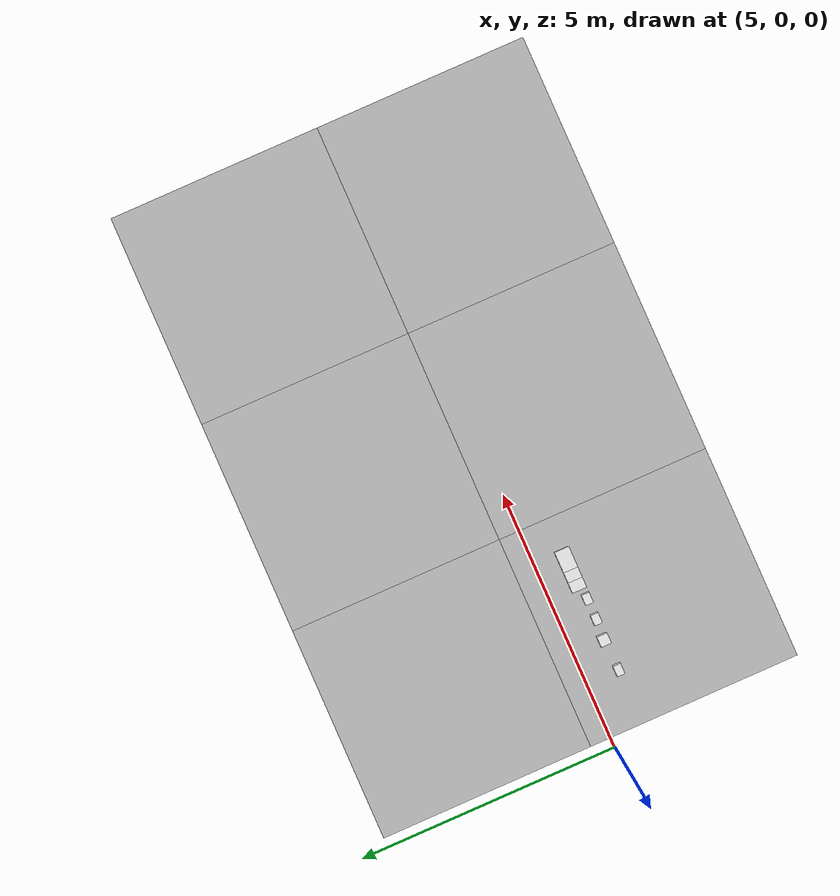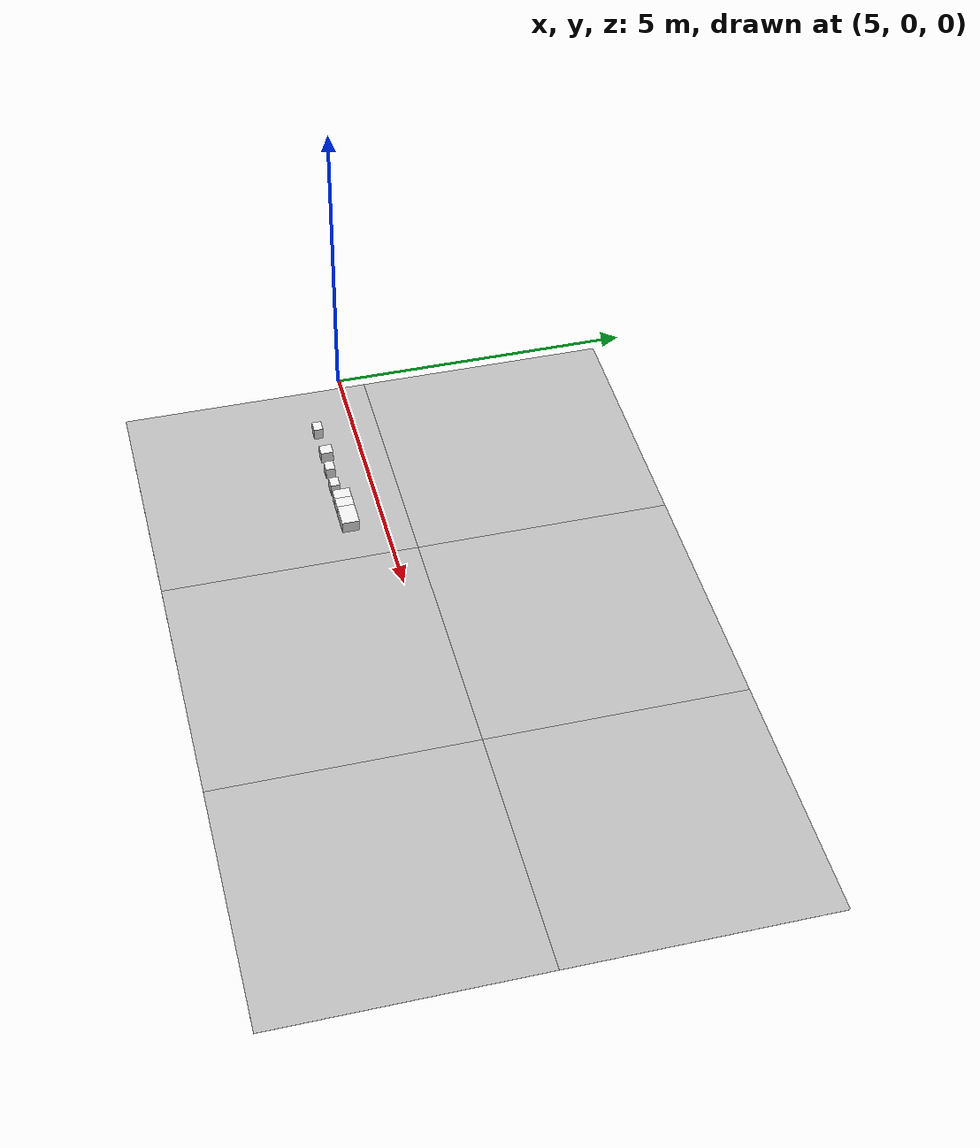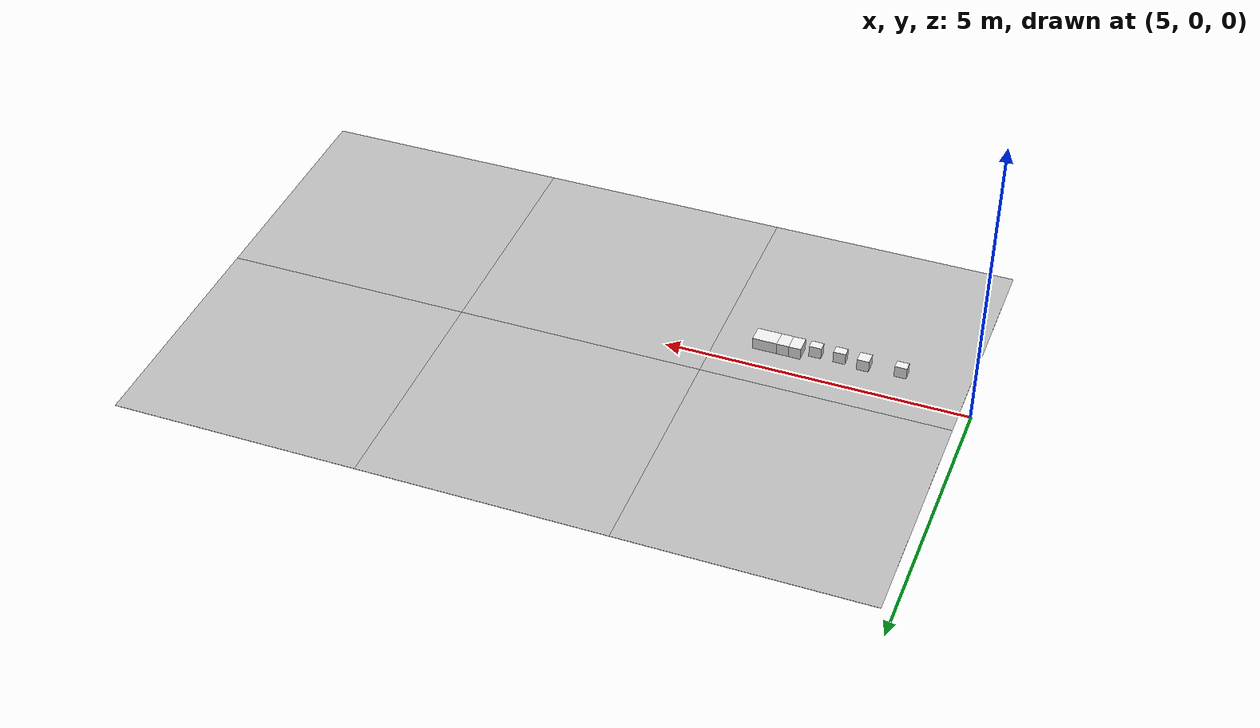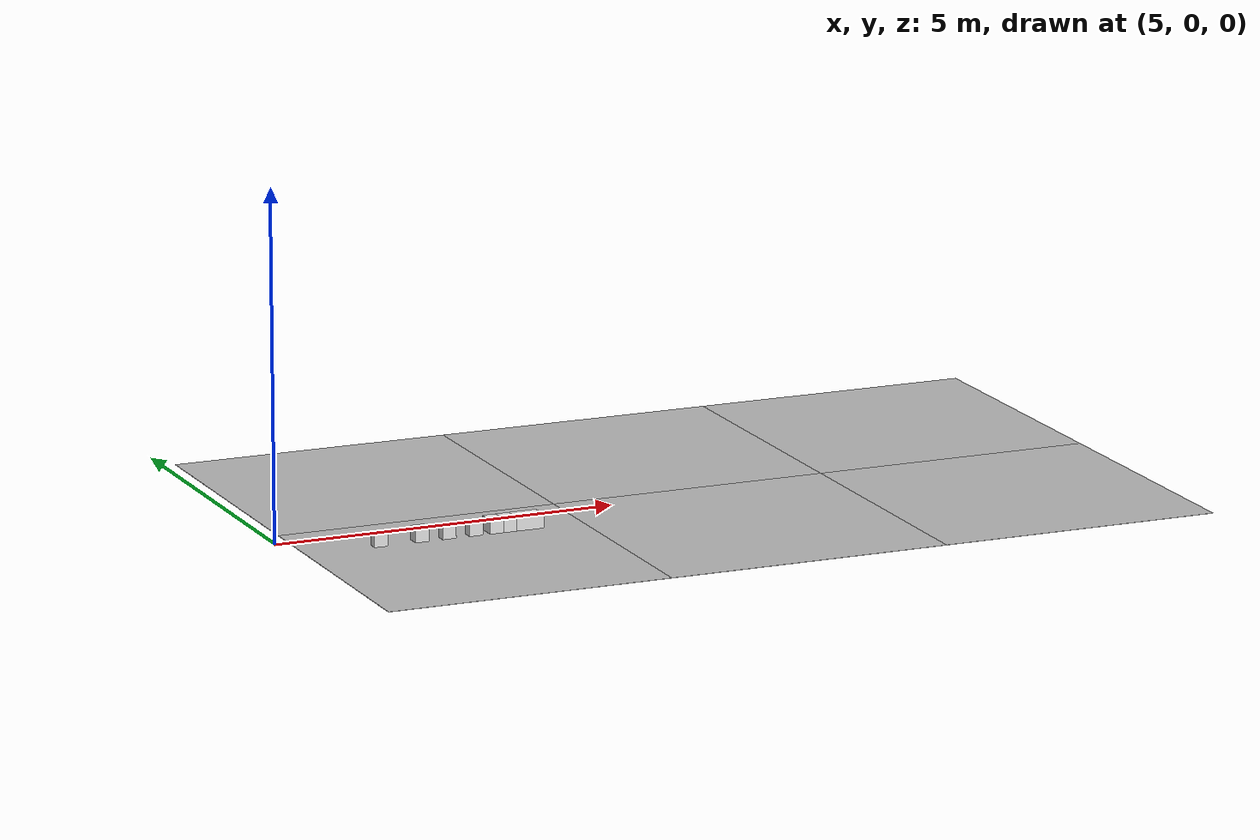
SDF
<sdf version="1.6">
 <world name="default">
  <model name="Tile/2-0">
   <static>1</static>
   <link name="link">
    <collision name="collision">
     <geometry><plane><normal>0 0 1</normal><size>4.096 4.096</size></plane></geometry>
     <surface><friction><ode><mu>100</mu><mu2>50</mu2></ode></friction></surface>
    </collision>
    <visual name="visual">
     <cast_shadows>0</cast_shadows>
     <geometry><plane><normal>0 0 1</normal><size>4.096 4.096</size></plane></geometry>
     <material>
      <script>
       <uri>file://materials/scripts</uri>
       <uri>file://materials/textures</uri>
       <name>Tile/de8eaad738ad65a0d931077eea8b989b5dd03675c4cb1d61e5e78d39ffbdf173</name>
      </script>
     </material>
    </visual>
   </link>
   <pose>7.24 -1.6520000000000001 0 0 -0 0</pose>
  </model>
  <model name="Tile/2-1">
   <static>1</static>
   <link name="link">
    <collision name="collision">
     <geometry><plane><normal>0 0 1</normal><size>4.096 4.096</size></plane></geometry>
     <surface><friction><ode><mu>100</mu><mu2>50</mu2></ode></friction></surface>
    </collision>
    <visual name="visual">
     <cast_shadows>0</cast_shadows>
     <geometry><plane><normal>0 0 1</normal><size>4.096 4.096</size></plane></geometry>
     <material>
      <script>
       <uri>file://materials/scripts</uri>
       <uri>file://materials/textures</uri>
       <name>Tile/13957a6de1f2afce18d7f1f64dacc2f21295e26ccf498256b0e1a51002cd5706</name>
      </script>
     </material>
    </visual>
   </link>
   <pose>7.24 2.444 0 0 -0 0</pose>
  </model>
  <model name="Tile/3-0">
   <static>1</static>
   <link name="link">
    <collision name="collision">
     <geometry><plane><normal>0 0 1</normal><size>4.096 4.096</size></plane></geometry>
     <surface><friction><ode><mu>100</mu><mu2>50</mu2></ode></friction></surface>
    </collision>
    <visual name="visual">
     <cast_shadows>0</cast_shadows>
     <geometry><plane><normal>0 0 1</normal><size>4.096 4.096</size></plane></geometry>
     <material>
      <script>
       <uri>file://materials/scripts</uri>
       <uri>file://materials/textures</uri>
       <name>Tile/111f8e0d8c51f334f23d011a10eb52587be8e7a657552f379bd2c1ff659dc3a3</name>
      </script>
     </material>
    </visual>
   </link>
   <pose>11.336 -1.6520000000000001 0 0 -0 0</pose>
  </model>
  <model name="Tile/3-1">
   <static>1</static>
   <link name="link">
    <collision name="collision">
     <geometry><plane><normal>0 0 1</normal><size>4.096 4.096</size></plane></geometry>
     <surface><friction><ode><mu>100</mu><mu2>50</mu2></ode></friction></surface>
    </collision>
    <visual name="visual">
     <cast_shadows>0</cast_shadows>
     <geometry><plane><normal>0 0 1</normal><size>4.096 4.096</size></plane></geometry>
     <material>
      <script>
       <uri>file://materials/scripts</uri>
       <uri>file://materials/textures</uri>
       <name>Tile/cb1fd5b78269205a9aa36935c8bc2dd2b8cda2b317bfc3189a5dbf9e0c5ba8b5</name>
      </script>
     </material>
    </visual>
   </link>
   <pose>11.336 2.444 0 0 -0 0</pose>
  </model>
  <model name="Tile/4-0">
   <static>1</static>
   <link name="link">
    <collision name="collision">
     <geometry><plane><normal>0 0 1</normal><size>4.096 4.096</size></plane></geometry>
     <surface><friction><ode><mu>100</mu><mu2>50</mu2></ode></friction></surface>
    </collision>
    <visual name="visual">
     <cast_shadows>0</cast_shadows>
     <geometry><plane><normal>0 0 1</normal><size>4.096 4.096</size></plane></geometry>
     <material>
      <script>
       <uri>file://materials/scripts</uri>
       <uri>file://materials/textures</uri>
       <name>Tile/5eab350b8220ac9944dbdfa4ac3288c7c17e24c3bf5df0dfcf6173d64dae00a1</name>
      </script>
     </material>
    </visual>
   </link>
   <pose>15.431999999999999 -1.6520000000000001 0 0 -0 0</pose>
  </model>
  <model name="Tile/4-1">
   <static>1</static>
   <link name="link">
    <collision name="collision">
     <geometry><plane><normal>0 0 1</normal><size>4.096 4.096</size></plane></geometry>
     <surface><friction><ode><mu>100</mu><mu2>50</mu2></ode></friction></surface>
    </collision>
    <visual name="visual">
     <cast_shadows>0</cast_shadows>
     <geometry><plane><normal>0 0 1</normal><size>4.096 4.096</size></plane></geometry>
     <material>
      <script>
       <uri>file://materials/scripts</uri>
       <uri>file://materials/textures</uri>
       <name>Tile/5eab350b8220ac9944dbdfa4ac3288c7c17e24c3bf5df0dfcf6173d64dae00a1</name>
      </script>
     </material>
    </visual>
   </link>
   <pose>15.431999999999999 2.444 0 0 -0 0</pose>
  </model>
  <model name="Obstacle/-54/0">
   <pose>6.28 -0.625 0.1 0 0 -0.0</pose>
   <link name="link">
    <inertial>
     <mass>10</mass>
     <inertia>
      <ixx>0.166667</ixx>
      <ixy>0</ixy>
      <ixz>0</ixz>
      <iyy>0.166667</iyy>
      <iyz>0</iyz>
      <izz>0.166667</izz>
     </inertia>
    </inertial>
    <collision name="collision"><geometry><box><size>0.2 0.15 0.2</size></box></geometry></collision>
    <visual name="visual">
     <geometry><box><size>0.2 0.15 0.2</size></box></geometry>
     <material>
      <script><name>Gazebo/White</name><uri>file://media/materials/scripts/gazebo.material</uri></script>
     </material>
    </visual>
   </link>
  </model>
  <model name="Obstacle/-61/0">
   <pose>6.880000000000001 -0.6 0.1 0 0 -0.0</pose>
   <link name="link">
    <inertial>
     <mass>10</mass>
     <inertia>
      <ixx>0.166667</ixx>
      <ixy>0</ixy>
      <ixz>0</ixz>
      <iyy>0.166667</iyy>
      <iyz>0</iyz>
      <izz>0.166667</izz>
     </inertia>
    </inertial>
    <collision name="collision"><geometry><box><size>0.2 0.2 0.2</size></box></geometry></collision>
    <visual name="visual">
     <geometry><box><size>0.2 0.2 0.2</size></box></geometry>
     <material>
      <script><name>Gazebo/White</name><uri>file://media/materials/scripts/gazebo.material</uri></script>
     </material>
    </visual>
   </link>
  </model>
  <model name="Obstacle/-68/0">
   <pose>7.280000000000001 -0.625 0.1 0 0 -0.0</pose>
   <link name="link">
    <inertial>
     <mass>10</mass>
     <inertia>
      <ixx>0.166667</ixx>
      <ixy>0</ixy>
      <ixz>0</ixz>
      <iyy>0.166667</iyy>
      <iyz>0</iyz>
      <izz>0.166667</izz>
     </inertia>
    </inertial>
    <collision name="collision"><geometry><box><size>0.2 0.15 0.2</size></box></geometry></collision>
    <visual name="visual">
     <geometry><box><size>0.2 0.15 0.2</size></box></geometry>
     <material>
      <script><name>Gazebo/White</name><uri>file://media/materials/scripts/gazebo.material</uri></script>
     </material>
    </visual>
   </link>
  </model>
  <model name="Obstacle/-75/0">
   <pose>7.6800000000000015 -0.625 0.1 0 0 -0.0</pose>
   <link name="link">
    <inertial>
     <mass>10</mass>
     <inertia>
      <ixx>0.166667</ixx>
      <ixy>0</ixy>
      <ixz>0</ixz>
      <iyy>0.166667</iyy>
      <iyz>0</iyz>
      <izz>0.166667</izz>
     </inertia>
    </inertial>
    <collision name="collision"><geometry><box><size>0.2 0.15 0.2</size></box></geometry></collision>
    <visual name="visual">
     <geometry><box><size>0.2 0.15 0.2</size></box></geometry>
     <material>
      <script><name>Gazebo/White</name><uri>file://media/materials/scripts/gazebo.material</uri></script>
     </material>
    </visual>
   </link>
  </model>
  <model name="Obstacle/-82/0">
   <pose>7.980000000000001 -0.5599999999999999 0.1 0 0 -0.0</pose>
   <link name="link">
    <inertial>
     <mass>10</mass>
     <inertia>
      <ixx>0.166667</ixx>
      <ixy>0</ixy>
      <ixz>0</ixz>
      <iyy>0.166667</iyy>
      <iyz>0</iyz>
      <izz>0.166667</izz>
     </inertia>
    </inertial>
    <collision name="collision"><geometry><box><size>0.2 0.28 0.2</size></box></geometry></collision>
    <visual name="visual">
     <geometry><box><size>0.2 0.28 0.2</size></box></geometry>
     <material>
      <script><name>Gazebo/White</name><uri>file://media/materials/scripts/gazebo.material</uri></script>
     </material>
    </visual>
   </link>
  </model>
  <model name="Obstacle/-86/0">
   <pose>8.180000000000001 -0.5599999999999999 0.1 0 0 -0.0</pose>
   <link name="link">
    <inertial>
     <mass>10</mass>
     <inertia>
      <ixx>0.166667</ixx>
      <ixy>0</ixy>
      <ixz>0</ixz>
      <iyy>0.166667</iyy>
      <iyz>0</iyz>
      <izz>0.166667</izz>
     </inertia>
    </inertial>
    <collision name="collision"><geometry><box><size>0.2 0.28 0.2</size></box></geometry></collision>
    <visual name="visual">
     <geometry><box><size>0.2 0.28 0.2</size></box></geometry>
     <material>
      <script><name>Gazebo/White</name><uri>file://media/materials/scripts/gazebo.material</uri></script>
     </material>
    </visual>
   </link>
  </model>
  <model name="Obstacle/-90/0">
   <pose>8.48 -0.5599999999999999 0.1 0 0 -0.0</pose>
   <link name="link">
    <inertial>
     <mass>10</mass>
     <inertia>
      <ixx>0.166667</ixx>
      <ixy>0</ixy>
      <ixz>0</ixz>
      <iyy>0.166667</iyy>
      <iyz>0</iyz>
      <izz>0.166667</izz>
     </inertia>
    </inertial>
    <collision name="collision"><geometry><box><size>0.4 0.28 0.2</size></box></geometry></collision>
    <visual name="visual">
     <geometry><box><size>0.4 0.28 0.2</size></box></geometry>
     <material>
      <script><name>Gazebo/White</name><uri>file://media/materials/scripts/gazebo.material</uri></script>
     </material>
    </visual>
   </link>
  </model>
 </world>
</sdf>
